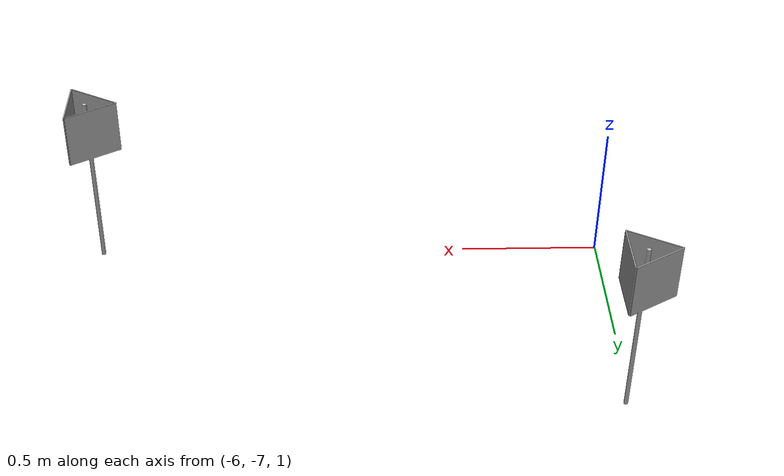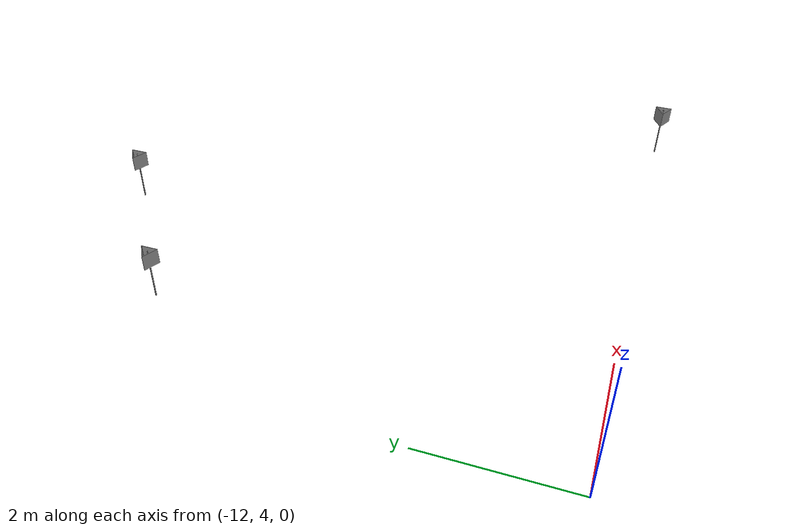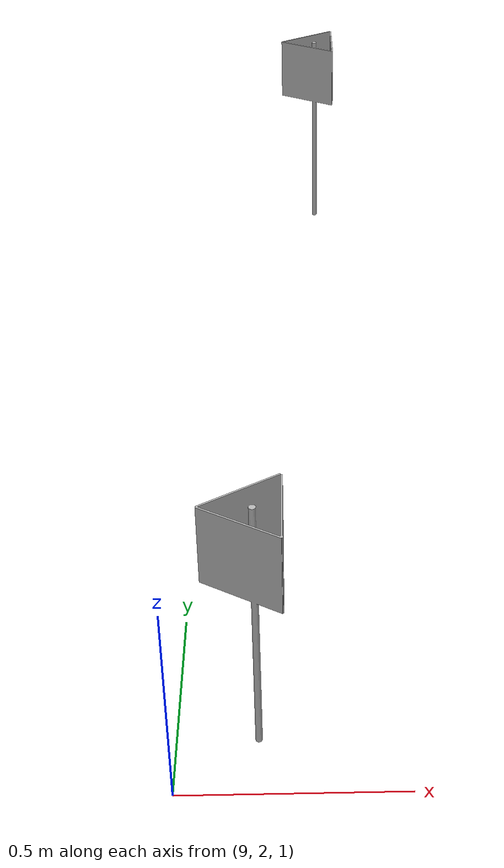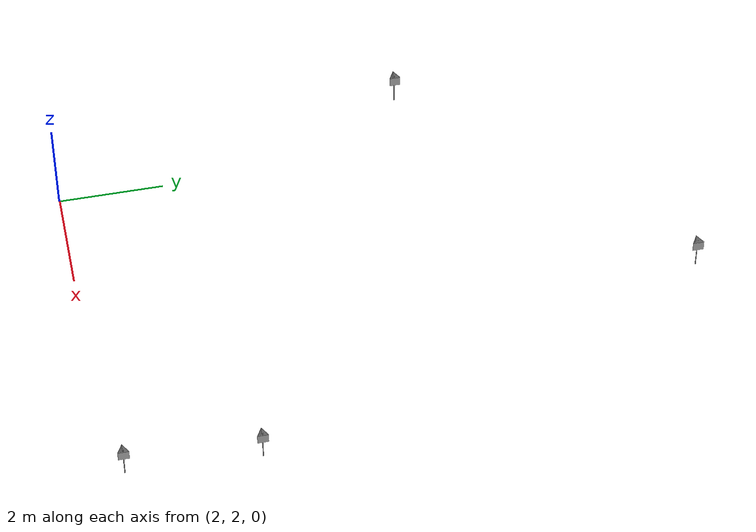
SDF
<sdf version="1.7">
 <world name="default">
  <light name="sun" type="directional">
   <pose>0 0 10 0 -0 0</pose>
   <diffuse>0.8 0.8 0.8 1</diffuse>
   <specular>0.2 0.2 0.2 1</specular>
   <attenuation>
    <range>1000</range>
    <constant>0.9</constant>
    <linear>0.01</linear>
    <quadratic>0.001</quadratic>
   </attenuation>
   <direction>-0.5 0.1 -0.9</direction>
   <spot><inner_angle>0</inner_angle><outer_angle>0</outer_angle><falloff>0</falloff></spot>
  </light>
  <gravity>0 0 -9.8</gravity>
  <magnetic_field>6e-06 2.3e-05 -4.2e-05</magnetic_field>
  <atmosphere type="adiabatic"/>
  <physics type="ode">
   <max_step_size>0.001</max_step_size>
   <real_time_factor>1</real_time_factor>
   <real_time_update_rate>1000</real_time_update_rate>
  </physics>
  <scene><ambient>0.4 0.4 0.4 1</ambient><background>0.7 0.7 0.7 1</background><shadows>1</shadows></scene>
  <spherical_coordinates>
   <surface_model>EARTH_WGS84</surface_model>
   <latitude_deg>0</latitude_deg>
   <longitude_deg>0</longitude_deg>
   <elevation>0</elevation>
   <heading_deg>0</heading_deg>
  </spherical_coordinates>
  <model name="Marker0">
   <static>1</static>
   <link name="link">
    <visual name="visual">
     <geometry>
      <mesh>
       <uri>/home/tototmek/rover-soft/src/gazebo_worlds/models/Marker0/Marker0.dae</uri>
       <scale>0.4 0.4 0.4</scale>
      </mesh>
     </geometry>
    </visual>
   </link>
   <pose>0.206639 -1.18211 1.57975 0 -0 0</pose>
  </model>
  <model name="Marker1">
   <static>1</static>
   <link name="link">
    <visual name="visual">
     <geometry>
      <mesh>
       <uri>/home/tototmek/rover-soft/src/gazebo_worlds/models/Marker1/Marker1.dae</uri>
       <scale>0.4 0.4 0.4</scale>
      </mesh>
     </geometry>
    </visual>
   </link>
   <pose>-6.69526 4.01085 1.47323 0 -0 0</pose>
  </model>
  <model name="Marker2">
   <static>1</static>
   <link name="link">
    <visual name="visual">
     <geometry>
      <mesh>
       <uri>/home/tototmek/rover-soft/src/gazebo_worlds/models/Marker2/Marker2.dae</uri>
       <scale>0.4 0.4 0.4</scale>
      </mesh>
     </geometry>
    </visual>
   </link>
   <pose>1.45405 8.65023 1.36174 0 -0 0</pose>
  </model>
  <model name="Marker3">
   <static>1</static>
   <link name="link">
    <visual name="visual">
     <geometry>
      <mesh>
       <uri>/home/tototmek/rover-soft/src/gazebo_worlds/models/Marker3/Marker3.dae</uri>
       <scale>0.4 0.4 0.4</scale>
      </mesh>
     </geometry>
    </visual>
   </link>
   <pose>9.17146 2.26276 1.34712 0 -0 0</pose>
  </model>
  <model name="Marker4">
   <static>1</static>
   <link name="link">
    <visual name="visual">
     <geometry>
      <mesh>
       <uri>/home/tototmek/rover-soft/src/gazebo_worlds/models/Marker4/Marker4.dae</uri>
       <scale>0.4 0.4 0.4</scale>
      </mesh>
     </geometry>
    </visual>
   </link>
   <pose>-6.03644 -6.35633 1.28897 0 -0 0</pose>
  </model>
  <model name="Marker5">
   <static>1</static>
   <link name="link">
    <visual name="visual">
     <geometry>
      <mesh>
       <uri>/home/tototmek/rover-soft/src/gazebo_worlds/models/Marker5/Marker5.dae</uri>
       <scale>0.4 0.4 0.4</scale>
      </mesh>
     </geometry>
    </visual>
   </link>
   <pose>-4.11638 -7.1381 1.37364 0 -0 0</pose>
  </model>
  <model name="Marker6">
   <static>1</static>
   <link name="link">
    <visual name="visual">
     <geometry>
      <mesh>
       <uri>/home/tototmek/rover-soft/src/gazebo_worlds/models/Marker6/Marker6.dae</uri>
       <scale>0.4 0.4 0.4</scale>
      </mesh>
     </geometry>
    </visual>
   </link>
   <pose>9.35063 4.71454 1.43241 0 -0 0</pose>
  </model>
  <model name="Marker7">
   <static>1</static>
   <link name="link">
    <visual name="visual">
     <geometry>
      <mesh>
       <uri>/home/tototmek/rover-soft/src/gazebo_worlds/models/Marker7/Marker7.dae</uri>
       <scale>0.4 0.4 0.4</scale>
      </mesh>
     </geometry>
    </visual>
   </link>
   <pose>-11.4858 9.28516 1.36938 0 -0 0</pose>
  </model>
  <model name="Marker8">
   <static>1</static>
   <link name="link">
    <visual name="visual">
     <geometry>
      <mesh>
       <uri>/home/tototmek/rover-soft/src/gazebo_worlds/models/Marker8/Marker8.dae</uri>
       <scale>0.4 0.4 0.4</scale>
      </mesh>
     </geometry>
    </visual>
   </link>
   <pose>-9.69207 10.4873 1.28935 0 -0 0</pose>
  </model>
  <model name="Marker9">
   <static>1</static>
   <link name="link">
    <visual name="visual">
     <geometry>
      <mesh>
       <uri>/home/tototmek/rover-soft/src/gazebo_worlds/models/Marker9/Marker9.dae</uri>
       <scale>0.4 0.4 0.4</scale>
      </mesh>
     </geometry>
    </visual>
   </link>
   <pose>15.9258 -5.25662 1.71416 0 -0 0</pose>
  </model>
  <model name="Marker11">
   <static>1</static>
   <link name="link">
    <visual name="visual">
     <geometry>
      <mesh>
       <uri>/home/tototmek/rover-soft/src/gazebo_worlds/models/Marker11/Marker11.dae</uri>
       <scale>0.4 0.4 0.4</scale>
      </mesh>
     </geometry>
    </visual>
   </link>
   <pose>0.358636 -15.0765 1.31397 0 -0 0</pose>
  </model>
  <model name="Marker12">
   <static>1</static>
   <link name="link">
    <visual name="visual">
     <geometry>
      <mesh>
       <uri>/home/tototmek/rover-soft/src/gazebo_worlds/models/Marker12/Marker12.dae</uri>
       <scale>0.4 0.4 0.4</scale>
      </mesh>
     </geometry>
    </visual>
   </link>
   <pose>-15.0148 1.76803 1.34598 0 -0 0</pose>
  </model>
  <model name="Marker13">
   <static>1</static>
   <link name="link">
    <visual name="visual">
     <geometry>
      <mesh>
       <uri>/home/tototmek/rover-soft/src/gazebo_worlds/models/Marker13/Marker13.dae</uri>
       <scale>0.4 0.4 0.4</scale>
      </mesh>
     </geometry>
    </visual>
   </link>
   <pose>6.7473 13.2586 1.62067 0 -0 0</pose>
  </model>
  <model name="Marker14">
   <static>1</static>
   <link name="link">
    <visual name="visual">
     <geometry>
      <mesh>
       <uri>/home/tototmek/rover-soft/src/gazebo_worlds/models/Marker14/Marker14.dae</uri>
       <scale>0.4 0.4 0.4</scale>
      </mesh>
     </geometry>
    </visual>
   </link>
   <pose>19.1408 6.34489 1.52143 0 -0 0</pose>
  </model>
  <model name="Marker15">
   <static>1</static>
   <link name="link">
    <visual name="visual">
     <geometry>
      <mesh>
       <uri>/home/tototmek/rover-soft/src/gazebo_worlds/models/Marker15/Marker15.dae</uri>
       <scale>0.4 0.4 0.4</scale>
      </mesh>
     </geometry>
    </visual>
   </link>
   <pose>-11.3587 -14.764 1.52014 0 -0 0</pose>
  </model>
 </world>
</sdf>
